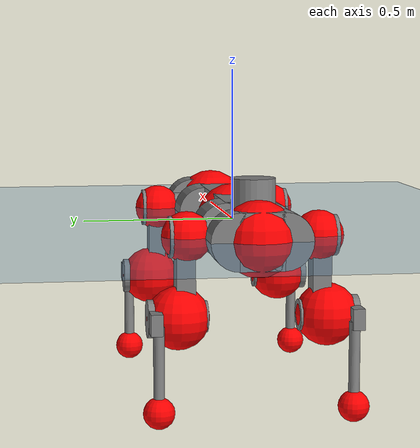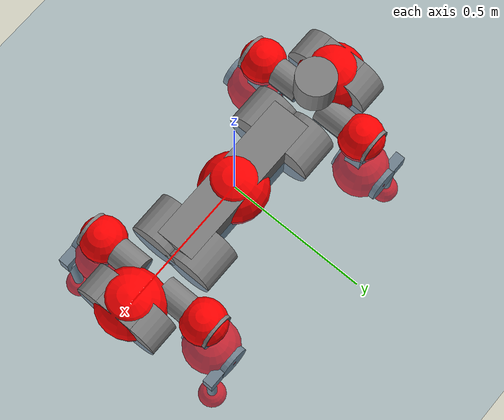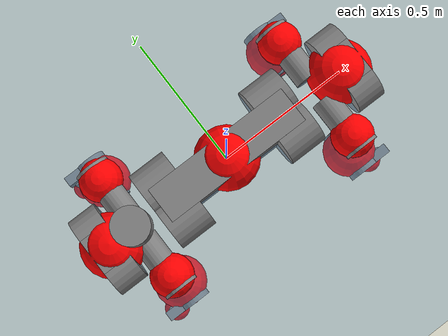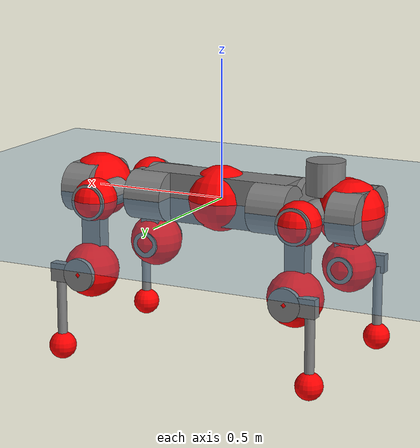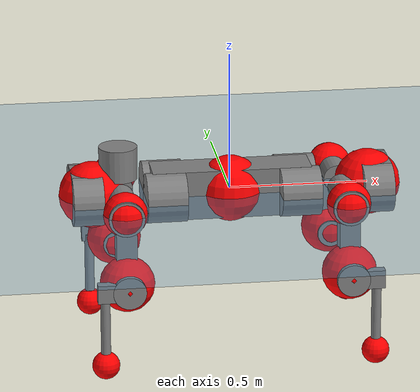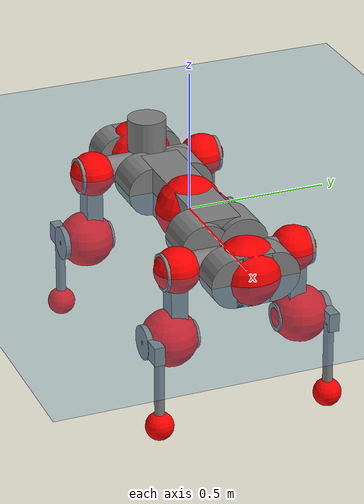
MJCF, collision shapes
<mujoco model="anymal_c">
  <compiler angle="radian" assetdir="assets" balanceinertia="true" inertiafromgeom="false"/>

  <option timestep="0.005" density="1.2" viscosity="2e-05"/>

  <size nkey="1"/>

  <visual>
    <quality shadowsize="8192"/>
    <map shadowclip="0.5"/>
  </visual>

  <default>
    <default class="/">
      <material specular="0" shininess="0.25"/>
      <geom contype="0" conaffinity="0" group="1" solref="-1000 -80"/>
      <site size="0.01 0.005 0.005" group="5"/>
      <general forcelimited="true" forcerange="-80 80" biastype="affine" gainprm="80" biasprm="0 -80 -2"/>
      <default class="anymal_c">
        <joint armature="0.01" damping="0.01" frictionloss="0.1"/>
        <default class="visual">
          <geom type="mesh" group="2"/>
          <default class="visual_zflip"/>
        </default>
        <default class="collision">
          <geom type="cylinder" group="3"/>
          <default class="foot">
            <geom size="0.03 0 0" type="sphere" condim="6" priority="1" friction="0.8 0.02 0.01" solimp="0.015 1 0.03"/>
          </default>
        </default>
      </default>
      <default class="reward_collision_sphere">
        <geom group="5" rgba="1 0 0 1"/>
      </default>
    </default>
  </default>

  <asset>
    <texture type="skybox" colorspace="auto" name="//unnamed_texture_0" builtin="gradient" rgb1="0.95 0.95 0.95" rgb2="0.95 0.95 0.95" width="100" height="600"/>
    <texture type="2d" colorspace="auto" name="texplane" builtin="checker" rgb1="0.345 0.575 0.748" rgb2="0.345 0.575 0.748" markrgb="1 1 1" width="512" height="512"/>
    <texture type="2d" colorspace="linear" name="base" file="base.png"/>
    <texture type="2d" colorspace="linear" name="top_shell" file="top_shell.png"/>
    <texture type="2d" colorspace="linear" name="bottom_shell" file="bottom_shell.png"/>
    <texture type="2d" colorspace="linear" name="remote" file="remote.png"/>
    <texture type="2d" colorspace="linear" name="hatch" file="hatch.png"/>
    <texture type="2d" colorspace="linear" name="handle" file="handle.png"/>
    <texture type="2d" colorspace="linear" name="face" file="face.png"/>
    <texture type="2d" colorspace="linear" name="battery" file="battery.png"/>
    <texture type="2d" colorspace="linear" name="lidar_cage" file="lidar_cage.png"/>
    <texture type="2d" colorspace="linear" name="depth_camera" file="depth_camera.png"/>
    <texture type="2d" colorspace="linear" name="wide_angle_camera" file="wide_angle_camera.png"/>
    <texture type="2d" colorspace="linear" name="lidar" file="lidar.png"/>
    <texture type="2d" colorspace="linear" name="drive" file="drive.png"/>
    <texture type="2d" colorspace="linear" name="hip_l" file="hip_l.png"/>
    <texture type="2d" colorspace="linear" name="shank_l" file="shank_l.png"/>
    <texture type="2d" colorspace="linear" name="foot" file="foot.png"/>
    <texture type="2d" colorspace="linear" name="thigh" file="thigh.png"/>
    <texture type="2d" colorspace="linear" name="shank_r" file="shank_r.png"/>
    <texture type="2d" colorspace="linear" name="hip_r" file="hip_r.png"/>
    <material name="MatPlane" class="/" texture="texplane" texuniform="true" texrepeat="2 2" specular="0.9" shininess="0.5"/>
    <material name="black_plastic" class="/" rgba="0.007 0.007 0.007 1"/>
    <material name="green" class="/" rgba="0.052 0.178 0.033 1"/>
    <material name="red" class="/" rgba="0.178 0.006 0.005 1"/>
    <material name="yellow" class="/" rgba="0.178 0.119 0.006 1"/>
    <material name="lwl" class="/" rgba="0.8 0.8 0.8 1"/>
    <material name="base" class="/" texture="base"/>
    <material name="top_shell" class="/" texture="top_shell"/>
    <material name="bottom_shell" class="/" texture="bottom_shell"/>
    <material name="hip_l" class="/" texture="hip_l"/>
    <material name="thigh" class="/" texture="thigh"/>
    <material name="shank_l" class="/" texture="shank_l"/>
    <material name="foot" class="/" texture="foot"/>
    <material name="hip_r" class="/" texture="hip_r"/>
    <material name="shank" class="/" texture="shank_r"/>
    <material name="hatch" class="/" texture="hatch"/>
    <material name="remote" class="/" texture="remote"/>
    <material name="handle" class="/" texture="handle"/>
    <material name="face" class="/" texture="face"/>
    <material name="depth_camera" class="/" texture="depth_camera"/>
    <material name="wide_angle_camera" class="/" texture="wide_angle_camera"/>
    <material name="battery" class="/" texture="battery"/>
    <material name="lidar_cage" class="/" texture="lidar_cage"/>
    <material name="lidar" class="/" texture="lidar"/>
    <material name="drive" class="/" texture="drive"/>
    <mesh name="base_0" class="/" file="base_0.obj"/>
    <mesh name="base_1" class="/" file="base_1.obj"/>
    <mesh name="base_2" class="/" file="base_2.obj"/>
    <mesh name="base_3" class="/" file="base_3.obj"/>
    <mesh name="base_4" class="/" file="base_4.obj"/>
    <mesh name="base_5" class="/" file="base_5.obj"/>
    <mesh name="top_shell" class="/" file="top_shell.obj"/>
    <mesh name="bottom_shell" class="/" file="bottom_shell.obj"/>
    <mesh name="remote" class="/" file="remote.obj"/>
    <mesh name="handle" class="/" file="handle.obj"/>
    <mesh name="face" class="/" file="face.obj"/>
    <mesh name="wide_angle_camera" class="/" file="wide_angle_camera.obj"/>
    <mesh name="depth_camera" class="/" file="depth_camera.obj"/>
    <mesh name="battery" class="/" file="battery.obj"/>
    <mesh name="lidar_cage" class="/" file="lidar_cage.obj"/>
    <mesh name="lidar" class="/" file="lidar.obj"/>
    <mesh name="drive" class="/" file="drive.obj"/>
    <mesh name="hip_l" class="/" file="hip_l.obj"/>
    <mesh name="thigh" class="/" file="thigh.obj"/>
    <mesh name="shank_l" class="/" file="shank_l.obj"/>
    <mesh name="foot" class="/" file="foot.obj"/>
    <mesh name="hip_r" class="/" file="hip_r.obj"/>
    <mesh name="hatch" class="/" file="hatch.obj"/>
    <mesh name="shank_r" class="/" file="shank_r.obj"/>
  </asset>

  <worldbody>
    <geom name="floor" class="/" size="100 100 0.125" type="plane" group="0" material="MatPlane"/>
    <light name="toplight_shadow" class="/" pos="0 0 5" dir="0.0990148 0.0990148 -0.990148" type="directional" ambient="0.04 0.04 0.04" diffuse="0.55 0.55 0.55" specular="0.12 0.12 0.12"/>
    <light name="toplight_fill" class="/" pos="0 0 5" dir="0.0990148 0.0990148 -0.990148" type="directional" castshadow="false" ambient="0.04 0.04 0.04" diffuse="0.3 0.3 0.3" specular="0.08 0.08 0.08"/>
    <body name="trunk" childclass="anymal_c" pos="0.0027805 0.000207584 7.30814e-05" quat="1 0.000119056 -0.000420795 0.000174453">
      <inertial pos="0.00265571 0.00114985 0.0422991" quat="0.50428 0.501244 0.499498 0.494932" mass="18.4205" diaginertia="1.13723 0.577663 0.113138"/>
      <joint name="//unnamed_joint_0" type="free" armature="0" damping="0" frictionloss="0"/>
      <geom name="//unnamed_geom_1" class="visual" material="green" mesh="base_0"/>
      <geom name="//unnamed_geom_2" class="visual" material="yellow" mesh="base_1"/>
      <geom name="//unnamed_geom_3" class="visual" material="red" mesh="base_2"/>
      <geom name="//unnamed_geom_4" class="visual" material="black_plastic" mesh="base_3"/>
      <geom name="//unnamed_geom_5" class="visual" material="lwl" mesh="base_4"/>
      <geom name="//unnamed_geom_6" class="visual" material="base" mesh="base_5"/>
      <geom name="trunk_1" class="collision" size="0.286132 0.0690664 0.0887997" type="box"/>
      <geom name="trunk_2" class="collision" size="0.0887997 0.0715331" pos="0.240798 0.0682354 0" quat="0.707107 0 0.707107 0"/>
      <geom name="trunk_3" class="collision" size="0.0887997 0.0715331" pos="-0.240798 0.0682354 0" quat="0.707107 0 0.707107 0"/>
      <geom name="trunk_4" class="collision" size="0.0887997 0.0715331" pos="0.240798 -0.0682354 0" quat="0.707107 0 0.707107 0"/>
      <geom name="trunk_5" class="collision" size="0.0887997 0.0715331" pos="-0.240798 -0.0682354 0" quat="0.707107 0 0.707107 0"/>
      <geom name="//unnamed_geom_12" class="visual" material="top_shell" mesh="top_shell"/>
      <geom name="//unnamed_geom_13" class="visual" material="bottom_shell" mesh="bottom_shell"/>
      <geom name="//unnamed_geom_14" class="visual" material="remote" mesh="remote"/>
      <geom name="//unnamed_geom_15" class="visual" material="handle" mesh="handle"/>
      <geom name="//unnamed_geom_16" class="visual" pos="0.458899 0 0" quat="1 0 0 0" material="face" mesh="face"/>
      <geom name="trunk_6" class="collision" size="0.0542665 0.0690664 0.0887997" pos="0.519791 0 0" type="box"/>
      <geom name="//unnamed_geom_18" class="collision" size="0.0887997 0.0542665" pos="0.519791 0.0682354 0" quat="0.707107 0 0.707107 0"/>
      <geom name="//unnamed_geom_19" class="collision" size="0.0887997 0.0542665" pos="0.519791 -0.0682354 0" quat="0.707107 0 0.707107 0"/>
      <geom name="//unnamed_geom_20" class="visual" pos="0.51109 0 -0.0238994" quat="0.965926 0 0.258819 0" material="depth_camera" mesh="depth_camera"/>
      <geom name="//unnamed_geom_21" class="visual" pos="0.56795 0 0.0131449" material="wide_angle_camera" mesh="wide_angle_camera"/>
      <geom name="//unnamed_geom_22" class="visual_zflip" pos="-0.458899 0 0" quat="0 0 0 1" material="face" mesh="face"/>
      <geom name="trunk_7" class="collision" size="0.0542665 0.0690664 0.0887997" pos="-0.519791 0 0" quat="0 0 0 1" type="box"/>
      <geom name="//unnamed_geom_24" class="collision" size="0.0887997 0.0542665" pos="-0.519791 -0.0682354 0" quat="0 -0.707107 0 0.707107"/>
      <geom name="//unnamed_geom_25" class="collision" size="0.0887997 0.0542665" pos="-0.519791 0.0682354 0" quat="0 -0.707107 0 0.707107"/>
      <geom name="//unnamed_geom_26" class="visual" pos="-0.51109 0 -0.0238994" quat="0 -0.258819 0 0.965926" material="depth_camera" mesh="depth_camera"/>
      <geom name="//unnamed_geom_27" class="visual_zflip" pos="-0.56795 0 0.0131449" quat="0 0 0 1" material="wide_angle_camera" mesh="wide_angle_camera"/>
      <geom name="//unnamed_geom_28" class="visual" material="battery" mesh="battery"/>
      <geom name="//unnamed_geom_29" class="visual" pos="0 0.0727867 0.027249" quat="0.683013 -0.183013 0.183013 0.683013" material="depth_camera" mesh="depth_camera"/>
      <geom name="//unnamed_geom_30" class="visual" pos="0 -0.0727867 0.027249" quat="0.683013 0.183013 0.183013 -0.683013" material="depth_camera" mesh="depth_camera"/>
      <geom name="//unnamed_geom_31" class="visual" pos="-0.40299 0 0.0645391" quat="1 0 0 0" material="lidar_cage" mesh="lidar_cage"/>
      <geom name="trunk_8" class="collision" size="0.0690664 0.0591998" pos="-0.40299 0 0.117224"/>
      <geom name="//unnamed_geom_33" class="visual" pos="-0.40299 -5.19865e-05 0.124863" quat="0.707107 0 0 -0.707107" material="lidar" mesh="lidar"/>
      <geom name="//unnamed_geom_34" class="visual" pos="0.332024 0.101344 1.66823e-09" quat="0.258819 0.965926 0 0" material="drive" mesh="drive"/>
      <geom name="//unnamed_geom_35" class="visual" pos="0.332024 -0.101344 -1.66823e-09" quat="0.258819 -0.965926 0 0" material="drive" mesh="drive"/>
      <geom name="//unnamed_geom_36" class="visual" pos="-0.332024 0.101344 -1.66823e-09" quat="0 0 0.965926 -0.258819" material="drive" mesh="drive"/>
      <geom name="//unnamed_geom_37" class="visual" pos="-0.332024 -0.101344 1.66823e-09" quat="0 0 -0.965926 -0.258819" material="drive" mesh="drive"/>
      <geom name="//unnamed_geom_38" class="visual" pos="0.128425 0 0.0641001" quat="1 0 0 0" material="hatch" mesh="hatch"/>
      <geom name="//unnamed_geom_39" class="reward_collision_sphere" size="0.1184"/>
      <geom name="//unnamed_geom_40" class="reward_collision_sphere" size="0.1184" pos="0.498202 0 0"/>
      <geom name="//unnamed_geom_41" class="reward_collision_sphere" size="0.1184" pos="-0.498202 0 0"/>
      <site name="imu" pos="0.27167 0.012584 0.0276112" size="0.00986664"/>
      <camera name="track" pos="0 -1.94958 0" quat="0.707107 0.707107 0 0" mode="trackcom"/>
      <camera name="ego_camera" pos="0.498202 0 -0.0351233" quat="-0.5 -0.5 0.5 0.5"/>
      <body name="LF_HIP" pos="0.331196 0.101921 -0.0017503" quat="0.2587 0.965957 0.000333699 -0.00128104">
        <inertial pos="0.0600766 -0.0148275 -0.00736061" quat="-0.127906 0.709179 -0.135039 0.680052" mass="2.6895" diaginertia="0.00981211 0.00417193 0.00172366"/>
        <joint name="LF_HAA" pos="0 0 0" axis="0.999925 0.0106094 -0.00618128" range="-0.714817 0.491459" armature="0.00860114" damping="0.00441373" frictionloss="0.103763"/>
        <geom name="//unnamed_geom_42" class="visual" pos="0 9.81343e-05 -1.61185e-05" quat="0.258819 -0.965926 0 0" material="hip_l" mesh="hip_l"/>
        <geom name="//unnamed_geom_43" class="visual" pos="0.0663162 -0.0785796 -0.0446527" quat="0.183013 -0.683013 0.683013 0.183013" material="drive" mesh="drive"/>
        <geom name="//unnamed_geom_44" class="collision" size="0.0493332 0.0690664" pos="0.0663162 -0.0116583 -0.00606317" quat="-0.353553 -0.612372 0.612372 -0.353553"/>
        <body name="LF_THIGH" pos="0.06484 -0.0711038 -0.0383348" quat="0.18276 -0.683061 0.683082 0.182827">
          <inertial pos="0.0339757 4.60324e-05 -0.218134" quat="0.993312 -0.00903016 -0.0785073 0.0841813" mass="2.96854" diaginertia="0.050785 0.0263371 0.00217476"/>
          <joint name="LF_HFE" pos="0 0 0" axis="0.999969 0.00630499 0.00462809" range="-3.13923 3.13707" armature="0.0113419" damping="0.000413739" frictionloss="0.0905349"/>
          <geom name="//unnamed_geom_45" class="visual" pos="0.00263272 4.14856e-06 0" quat="0.707107 0 0 -0.707107" material="thigh" mesh="thigh"/>
          <geom name="//unnamed_geom_46" class="collision" size="0.0641331 0.0394665" pos="0.0442846 0 0" quat="0.5 0.5 -0.5 -0.5"/>
          <geom name="//unnamed_geom_47" class="collision" size="0.0369999 0.0295999 0.139429" pos="0.0332135 0 -0.124085" quat="0.707107 0 0 -0.707107" type="box"/>
          <geom name="//unnamed_geom_48" class="visual" pos="0.111044 0 -0.250254" quat="1 0 0 0" material="drive" mesh="drive"/>
          <geom name="//unnamed_geom_49" class="collision" size="0.0493332 0.0690664" pos="0.0335456 0 -0.250254" quat="0.707107 0 0.707107 0"/>
          <geom name="//unnamed_geom_50" class="reward_collision_sphere" size="0.0789331" pos="0.0276779 0 0"/>
          <body name="LF_SHANK" pos="0.111007 -0.00273279 -0.249559" quat="0.999999 -0.000424877 -0.000497677 -0.000917277">
            <inertial pos="0.00702737 -0.0586897 -0.0706091" quat="0.992018 -0.122499 -0.0127341 -0.0270682" mass="0.591659" diaginertia="0.0167373 0.00829509 0.000577105"/>
            <joint name="LF_KFE" pos="0 0 0" axis="0.999998 -0.000703522 0.00189075" stiffness="0.000338384" range="-3.13802 3.1602" armature="0.0100559" damping="0" frictionloss="0.096509"/>
            <geom name="//unnamed_geom_51" class="visual" pos="0.000858473 0.00457742 0" quat="0.707107 0 0 -0.707107" material="shank_l" mesh="shank_l"/>
            <geom name="LF_kfe_act" class="collision" size="0.0591998 0.0197333" pos="0.0221423 0 0" quat="0.5 0.5 -0.5 -0.5"/>
            <geom name="//unnamed_geom_53" class="collision" size="0.0567322 0.0332999 0.0187466" pos="0.0221423 -0.0560495 0" quat="0.5 0.5 -0.5 -0.5" type="box"/>
            <geom name="//unnamed_geom_54" class="visual" pos="0.0144476 -0.0842578 -0.296766" quat="0.382683 0 0 -0.92388" material="foot" mesh="foot"/>
            <geom name="LF_calf" class="collision" size="0.0172666 0.139368" pos="0.0144479 -0.0857329 -0.148383" quat="0.707107 0 0 -0.707107"/>
            <geom name="LF_foot" class="foot" size="0.0321254" pos="0.0144479 -0.0857329 -0.277009" quat="0.707107 0 0 -0.707107"/>
            <geom name="//unnamed_geom_57" class="reward_collision_sphere" size="0.0986664" pos="-0.0553558 0 0"/>
            <geom name="//unnamed_geom_58" class="reward_collision_sphere" size="0.0493332" pos="0.0144479 -0.0857329 -0.277009"/>
            <site name="LF_foot" class="foot" pos="0.0144479 -0.0857329 -0.277009" quat="0.707107 0 0 -0.707107" size="0.00986664"/>
          </body>
        </body>
      </body>
      <body name="RF_HIP" pos="0.329835 -0.0994854 -0.00171383" quat="0.259317 -0.965792 -0.000266203 -1.26038e-05">
        <inertial pos="0.0653965 0.0147923 -0.0100699" quat="0.139509 0.677723 0.136341 0.708971" mass="2.72713" diaginertia="0.0100492 0.00435325 0.00177699"/>
        <joint name="RF_HAA" pos="0 0 0" axis="0.999879 -0.0150946 0.00380238" range="-0.547349 0.7052" armature="0.00962569" damping="0.00562083" frictionloss="0.0850725"/>
        <geom name="//unnamed_geom_59" class="visual" pos="0 -9.81335e-05 -1.61184e-05" quat="0.258819 0.965926 0 0" material="hip_r" mesh="hip_r"/>
        <geom name="//unnamed_geom_60" class="visual" pos="0.0663162 0.0785796 -0.0446527" quat="0.183013 0.683013 0.683013 -0.183013" material="drive" mesh="drive"/>
        <geom name="//unnamed_geom_61" class="collision" size="0.0493332 0.0690664" pos="0.0663162 0.0116583 -0.00606317" quat="-0.353553 0.612372 0.612372 0.353553"/>
        <body name="RF_THIGH" pos="0.0664838 0.07021 -0.0358576" quat="0.182855 0.683122 0.682901 -0.183178">
          <inertial pos="0.0330249 0.00213408 -0.216165" quat="0.992781 -0.00512865 -0.0805983 0.0886731" mass="2.93943" diaginertia="0.0507052 0.0258691 0.0021797"/>
          <joint name="RF_HFE" pos="0 0 0" axis="0.999991 -0.00225923 -0.00368055" stiffness="0.00440081" range="-3.12538 3.16283" armature="0.0102491" damping="0" frictionloss="0.0934008"/>
          <geom name="//unnamed_geom_62" class="visual" pos="0.00263272 4.14856e-06 0" quat="0.707107 0 0 -0.707107" material="thigh" mesh="thigh"/>
          <geom name="//unnamed_geom_63" class="collision" size="0.0641331 0.0394665" pos="0.0442846 0 0" quat="0.5 0.5 0.5 0.5"/>
          <geom name="//unnamed_geom_64" class="collision" size="0.0369999 0.0295999 0.139429" pos="0.0332135 0 -0.124085" quat="0.707107 0 0 0.707107" type="box"/>
          <geom name="//unnamed_geom_65" class="visual" pos="0.111044 0 -0.250254" quat="1 0 0 0" material="drive" mesh="drive"/>
          <geom name="//unnamed_geom_66" class="collision" size="0.0493332 0.0690664" pos="0.0335456 0 -0.250254" quat="0.707107 0 0.707107 0"/>
          <geom name="//unnamed_geom_67" class="reward_collision_sphere" size="0.0789331" pos="0.0276779 0 0"/>
          <body name="RF_SHANK" pos="0.111844 -0.000481031 -0.246804" quat="0.999999 -0.000695555 -0.000427297 0.000974447">
            <inertial pos="0.0083217 0.0576075 -0.067881" quat="0.992723 0.11718 -0.00596753 0.0270908" mass="0.552397" diaginertia="0.0173737 0.00851694 0.000610092"/>
            <joint name="RF_KFE" pos="0 0 0" axis="0.999975 0.00633468 -0.00328313" stiffness="0.0057959" range="-3.19073 3.13726" armature="0.00939507" damping="0.0214274" frictionloss="0.112399"/>
            <geom name="//unnamed_geom_68" class="visual" pos="0.000858469 -0.00457742 0" quat="0.707107 0 0 0.707107" material="shank" mesh="shank_r"/>
            <geom name="RF_kfe_act" class="collision" size="0.0591998 0.0197333" pos="0.0221423 0 0" quat="0.5 0.5 0.5 0.5"/>
            <geom name="//unnamed_geom_70" class="collision" size="0.0567322 0.0332999 0.0187466" pos="0.0221423 0.0560495 0" quat="0.5 0.5 0.5 0.5" type="box"/>
            <geom name="//unnamed_geom_71" class="visual" pos="0.0144481 0.0842578 -0.296766" quat="0.382683 0 0 0.92388" material="foot" mesh="foot"/>
            <geom name="RF_calf" class="collision" size="0.0172666 0.139368" pos="0.0144479 0.0857329 -0.148383" quat="0.707107 0 0 0.707107"/>
            <geom name="RF_foot" class="foot" size="0.0301711" pos="0.0144479 0.0857329 -0.277009" quat="0.707107 0 0 0.707107"/>
            <geom name="//unnamed_geom_74" class="reward_collision_sphere" size="0.0986664" pos="-0.0553558 0 0"/>
            <geom name="//unnamed_geom_75" class="reward_collision_sphere" size="0.0493332" pos="0.0144479 0.0857329 -0.277009"/>
            <site name="RF_foot" class="foot" pos="0.0144479 0.0857329 -0.277009" quat="0.707107 0 0 0.707107" size="0.00986664"/>
          </body>
        </body>
      </body>
      <body name="LH_HIP" pos="-0.329521 0.0988619 0.00072921" quat="3.79731e-05 0.000431991 0.965883 -0.258978">
        <inertial pos="0.0655396 0.0124959 -0.00769199" quat="0.139168 0.670124 0.135637 0.716358" mass="2.64312" diaginertia="0.00986718 0.00433977 0.00166216"/>
        <joint name="LH_HAA" pos="0 0 0" axis="0.999979 -0.0014653 0.00633878" range="-0.448792 0.728857" armature="0.00991131" damping="0.0103845" frictionloss="0.0996852"/>
        <geom name="//unnamed_geom_76" class="visual" pos="0 -9.81335e-05 -1.61184e-05" quat="-0.258819 -0.965926 0 0" material="hip_r" mesh="hip_r"/>
        <geom name="//unnamed_geom_77" class="visual" pos="0.0663162 0.0785796 -0.0446527" quat="0.183013 0.683013 0.683013 -0.183013" material="drive" mesh="drive"/>
        <geom name="//unnamed_geom_78" class="collision" size="0.0493332 0.0690664" pos="0.0663162 0.0116583 -0.00606317" quat="-0.353553 0.612372 0.612372 0.353553"/>
        <body name="LH_THIGH" pos="0.0669199 0.0713436 -0.0363733" quat="0.182929 0.683122 0.682995 -0.182755">
          <inertial pos="0.0331486 0.00252808 -0.215483" quat="0.993561 -0.0043236 -0.083886 0.076035" mass="2.99871" diaginertia="0.0503803 0.0271465 0.00218314"/>
          <joint name="LH_HFE" pos="0 0 0" axis="0.999905 -0.00339107 -0.0133745" range="-3.09636 3.17996" armature="0.0112235" damping="0.00821877" frictionloss="0.112324"/>
          <geom name="//unnamed_geom_79" class="visual" pos="0.00263272 4.14856e-06 0" quat="0.707107 0 0 -0.707107" material="thigh" mesh="thigh"/>
          <geom name="//unnamed_geom_80" class="collision" size="0.0641331 0.0394665" pos="0.0442846 0 0" quat="0.5 0.5 -0.5 -0.5"/>
          <geom name="//unnamed_geom_81" class="collision" size="0.0369999 0.0295999 0.139429" pos="0.0332135 0 -0.124085" quat="0.707107 0 0 -0.707107" type="box"/>
          <geom name="//unnamed_geom_82" class="visual" pos="0.111044 0 -0.250254" quat="1 0 0 0" material="drive" mesh="drive"/>
          <geom name="//unnamed_geom_83" class="collision" size="0.0493332 0.0690664" pos="0.0335456 0 -0.250254" quat="0.707107 0 0.707107 0"/>
          <geom name="//unnamed_geom_84" class="reward_collision_sphere" size="0.0789331" pos="0.0276779 0 0"/>
          <body name="LH_SHANK" pos="0.109345 0.00204419 -0.252942" quat="0.999999 -0.000712433 -0.000561564 0.000914669">
            <inertial pos="0.00554516 0.0594668 -0.0686353" quat="0.99215 0.121693 0.00177948 0.0287409" mass="0.545363" diaginertia="0.0167777 0.00804864 0.000587954"/>
            <joint name="LH_KFE" pos="0 0 0" axis="0.999999 -0.000304788 0.00166153" range="-3.16339 3.09912" armature="0.00936891" damping="0.0104801" frictionloss="0.0856287"/>
            <geom name="//unnamed_geom_85" class="visual" pos="0.000858469 -0.00457742 0" quat="-0.707107 0 0 -0.707107" material="shank" mesh="shank_r"/>
            <geom name="LH_kfe_act" class="collision" size="0.0591998 0.0197333" pos="0.0221423 0 0" quat="0.5 0.5 -0.5 -0.5"/>
            <geom name="//unnamed_geom_87" class="collision" size="0.0567322 0.0332999 0.0187466" pos="0.0221423 0.0560495 0" quat="0.5 0.5 -0.5 -0.5" type="box"/>
            <geom name="//unnamed_geom_88" class="visual" pos="0.0144481 0.0842578 -0.296766" quat="-0.382683 0 0 -0.92388" material="foot" mesh="foot"/>
            <geom name="LH_calf" class="collision" size="0.0172666 0.139368" pos="0.0144479 0.0857329 -0.148383" quat="0.707107 0 0 -0.707107"/>
            <geom name="LH_foot" class="foot" size="0.0273058" pos="0.0144479 0.0857329 -0.277009" quat="0.707107 0 0 -0.707107"/>
            <geom name="//unnamed_geom_91" class="reward_collision_sphere" size="0.0986664" pos="-0.0553558 0 0"/>
            <geom name="//unnamed_geom_92" class="reward_collision_sphere" size="0.0493332" pos="0.0144479 0.0857329 -0.277009"/>
            <site name="LH_foot" class="foot" pos="0.0144479 0.0857329 -0.277009" quat="0.707107 0 0 -0.707107" size="0.00986664"/>
          </body>
        </body>
      </body>
      <body name="RH_HIP" pos="-0.334507 -0.101679 0.000373508" quat="4.1805e-05 -2.17241e-05 -0.965917 -0.258853">
        <inertial pos="0.0652167 -0.0137126 -0.00785213" quat="-0.128067 0.701439 -0.131224 0.68874" mass="2.70736" diaginertia="0.0100793 0.00450429 0.00178372"/>
        <joint name="RH_HAA" pos="0 0 0" axis="0.999911 0.00383094 0.0128071" range="-0.722928 0.487948" armature="0.00986534" damping="0.0162069" frictionloss="0.101336"/>
        <geom name="//unnamed_geom_93" class="visual" pos="0 9.81343e-05 -1.61185e-05" quat="-0.258819 0.965926 0 0" material="hip_l" mesh="hip_l"/>
        <geom name="//unnamed_geom_94" class="visual" pos="0.0663162 -0.0785796 -0.0446527" quat="-0.183013 0.683013 -0.683013 -0.183013" material="drive" mesh="drive"/>
        <geom name="//unnamed_geom_95" class="collision" size="0.0493332 0.0690664" pos="0.0663162 -0.0116583 -0.00606317" quat="0.353553 0.612372 -0.612372 0.353553"/>
        <body name="RH_THIGH" pos="0.0650081 -0.0707995 -0.034185" quat="-0.183032 0.683009 -0.68301 -0.18302">
          <inertial pos="0.0335637 0.000269198 -0.215952" quat="0.993379 -0.0158791 -0.0815465 0.0793514" mass="2.99405" diaginertia="0.0502336 0.0273115 0.00225577"/>
          <joint name="RH_HFE" pos="0 0 0" axis="0.999984 0.00453188 -0.00349298" range="-3.13173 3.14667" armature="0.0110902" damping="0" frictionloss="0.093146"/>
          <geom name="//unnamed_geom_96" class="visual" pos="0.00263272 4.14856e-06 0" quat="0.707107 0 0 -0.707107" material="thigh" mesh="thigh"/>
          <geom name="//unnamed_geom_97" class="collision" size="0.0641331 0.0394665" pos="0.0442846 0 0" quat="0.5 0.5 0.5 0.5"/>
          <geom name="//unnamed_geom_98" class="collision" size="0.0369999 0.0295999 0.139429" pos="0.0332135 0 -0.124085" quat="0.707107 0 0 0.707107" type="box"/>
          <geom name="//unnamed_geom_99" class="visual" pos="0.111044 0 -0.250254" quat="1 0 0 0" material="drive" mesh="drive"/>
          <geom name="//unnamed_geom_100" class="collision" size="0.0493332 0.0690664" pos="0.0335456 0 -0.250254" quat="0.707107 0 0.707107 0"/>
          <geom name="//unnamed_geom_101" class="reward_collision_sphere" size="0.0789331" pos="0.0276779 0 0"/>
          <body name="RH_SHANK" pos="0.111357 2.81669e-06 -0.250062" quat="1 0.000214545 0.000365544 0.000138319">
            <inertial pos="0.00334506 -0.0621418 -0.0681932" quat="0.992912 -0.116073 -0.000479747 -0.0255294" mass="0.588089" diaginertia="0.016532 0.00846257 0.000585778"/>
            <joint name="RH_KFE" pos="0 0 0" axis="0.999995 0.00212456 -0.00224692" range="-3.11658 3.18978" armature="0.00996505" damping="0.00459761" frictionloss="0.11168"/>
            <geom name="//unnamed_geom_102" class="visual" pos="0.000858473 0.00457742 0" quat="0.707107 0 0 -0.707107" material="shank_l" mesh="shank_l"/>
            <geom name="RH_kfe_act" class="collision" size="0.0591998 0.0197333" pos="0.0221423 0 0" quat="0.5 0.5 0.5 0.5"/>
            <geom name="//unnamed_geom_104" class="collision" size="0.0567322 0.0332999 0.0187466" pos="0.0221423 -0.0560495 0" quat="0.5 0.5 0.5 0.5" type="box"/>
            <geom name="//unnamed_geom_105" class="visual" pos="0.0144476 -0.0842578 -0.296766" quat="0.382683 0 0 -0.92388" material="foot" mesh="foot"/>
            <geom name="RH_calf" class="collision" size="0.0172666 0.139368" pos="0.0144479 -0.0857329 -0.148383" quat="0.707107 0 0 0.707107"/>
            <geom name="RH_foot" class="foot" size="0.0308015" pos="0.0144479 -0.0857329 -0.277009" quat="0.707107 0 0 0.707107"/>
            <geom name="//unnamed_geom_108" class="reward_collision_sphere" size="0.0986664" pos="-0.0553558 0 0"/>
            <geom name="//unnamed_geom_109" class="reward_collision_sphere" size="0.0493332" pos="0.0144479 -0.0857329 -0.277009"/>
            <site name="RH_foot" class="foot" pos="0.0144479 -0.0857329 -0.277009" quat="0.707107 0 0 0.707107" size="0.00986664"/>
          </body>
        </body>
      </body>
    </body>
  </worldbody>

  <contact>
    <pair class="/" geom1="floor" geom2="LF_foot" name="//unnamed_contact_0"/>
    <pair class="/" geom1="floor" geom2="RF_foot" name="//unnamed_contact_1"/>
    <pair class="/" geom1="floor" geom2="LH_foot" name="//unnamed_contact_2"/>
    <pair class="/" geom1="floor" geom2="RH_foot" name="//unnamed_contact_3"/>
  </contact>

  <actuator>
    <general name="LF_HAA" class="/" joint="LF_HAA" forcerange="-80.1454 80.1454" gainprm="78.9236" biasprm="0 -78.9236 -2.01419"/>
    <general name="LF_HFE" class="/" joint="LF_HFE" forcerange="-70.9137 70.9137" gainprm="78.9236" biasprm="0 -78.9236 -2.01419"/>
    <general name="LF_KFE" class="/" joint="LF_KFE" forcerange="-81.4606 81.4606" gainprm="78.9236" biasprm="0 -78.9236 -2.01419"/>
    <general name="RF_HAA" class="/" joint="RF_HAA" forcerange="-78.8762 78.8762" gainprm="78.9236" biasprm="0 -78.9236 -2.01419"/>
    <general name="RF_HFE" class="/" joint="RF_HFE" forcerange="-76.5714 76.5714" gainprm="78.9236" biasprm="0 -78.9236 -2.01419"/>
    <general name="RF_KFE" class="/" joint="RF_KFE" forcerange="-84.7313 84.7313" gainprm="78.9236" biasprm="0 -78.9236 -2.01419"/>
    <general name="LH_HAA" class="/" joint="LH_HAA" forcerange="-79.2949 79.2949" gainprm="78.9236" biasprm="0 -78.9236 -2.01419"/>
    <general name="LH_HFE" class="/" joint="LH_HFE" forcerange="-85.6349 85.6349" gainprm="78.9236" biasprm="0 -78.9236 -2.01419"/>
    <general name="LH_KFE" class="/" joint="LH_KFE" forcerange="-76.0671 76.0671" gainprm="78.9236" biasprm="0 -78.9236 -2.01419"/>
    <general name="RH_HAA" class="/" joint="RH_HAA" forcerange="-78.2567 78.2567" gainprm="78.9236" biasprm="0 -78.9236 -2.01419"/>
    <general name="RH_HFE" class="/" joint="RH_HFE" forcerange="-78.4448 78.4448" gainprm="78.9236" biasprm="0 -78.9236 -2.01419"/>
    <general name="RH_KFE" class="/" joint="RH_KFE" forcerange="-71.9199 71.9199" gainprm="78.9236" biasprm="0 -78.9236 -2.01419"/>
  </actuator>

  <sensor>
    <gyro site="imu" name="imu_angular_velocity"/>
    <velocimeter site="imu" name="imu_linear_velocity"/>
    <framelinvel objtype="site" objname="LF_foot" name="LF_foot_global_linear_velocity"/>
    <framelinvel objtype="site" objname="RF_foot" name="RF_foot_global_linear_velocity"/>
    <framelinvel objtype="site" objname="LH_foot" name="LH_foot_global_linear_velocity"/>
    <framelinvel objtype="site" objname="RH_foot" name="RH_foot_global_linear_velocity"/>
  </sensor>

  <keyframe>
    <key name="home" qpos="0 0 0.55 1 0 0 0 0 0.4 -0.8 0 -0.4 0.8 0 -0.4 0.8 0 0.4 -0.8"/>
  </keyframe>
</mujoco>
